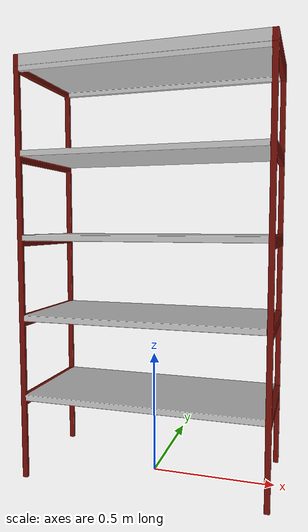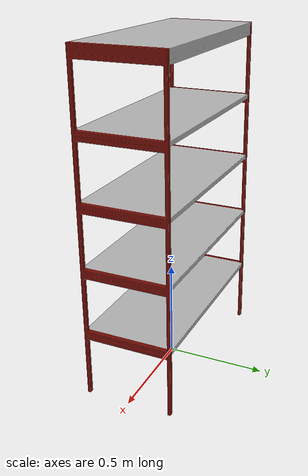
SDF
<?xml version="1.0"?>
<sdf version="1.6">
  <model name="rack">
    <static>false</static>
    <link name="link">
      <inertial>
        <pose>0 0 0 0 0 0</pose>
        <mass>1.87</mass>
        <inertia>
          <ixx>0.01857</ixx>
          <ixy>0.00</ixy>
          <ixz>0.00</ixz>
          <iyy>0.015598</iyy>
          <iyz>0.00</iyz>
          <izz>0.00305</izz>
        </inertia>
      </inertial>
      <collision name='collision_4'>
        <laser_retro>0</laser_retro>
        <max_contacts>10</max_contacts>
        <pose>0 0 1.315 0 1.57 0</pose>
        <geometry>
          <box>
            <size>0.05 0.44 1</size>
          </box>
        </geometry>
        <surface>
          <friction>
            <ode>
              <mu>1</mu>
              <mu2>1</mu2>
              <fdir1>0 0 0</fdir1>
              <slip1>0</slip1>
              <slip2>0</slip2>
            </ode>
            <torsional>
              <coefficient>1</coefficient>
              <patch_radius>0</patch_radius>
              <surface_radius>0</surface_radius>
              <use_patch_radius>1</use_patch_radius>
              <ode>
                <slip>0</slip>
              </ode>
            </torsional>
          </friction>
          <bounce>
            <restitution_coefficient>0</restitution_coefficient>
            <threshold>1e+06</threshold>
          </bounce>
          <contact>
            <collide_without_contact>0</collide_without_contact>
            <collide_without_contact_bitmask>1</collide_without_contact_bitmask>
            <collide_bitmask>1</collide_bitmask>
            <ode>
              <soft_cfm>0</soft_cfm>
              <soft_erp>0.2</soft_erp>
              <kp>1e+13</kp>
              <kd>1</kd>
              <max_vel>0.01</max_vel>
              <min_depth>0</min_depth>
            </ode>
            <bullet>
              <split_impulse>1</split_impulse>
              <split_impulse_penetration_threshold>-0.01</split_impulse_penetration_threshold>
              <soft_cfm>0</soft_cfm>
              <soft_erp>0.2</soft_erp>
              <kp>1e+13</kp>
              <kd>1</kd>
            </bullet>
          </contact>
        </surface>
      </collision>
      <collision name='collision_5'>
        <laser_retro>0</laser_retro>
        <max_contacts>10</max_contacts>
        <pose>0 0 0.98 0 1.57 0</pose>
        <geometry>
          <box>
            <size>0.05 0.448 1</size>
          </box>
        </geometry>
        <surface>
          <friction>
            <ode>
              <mu>1</mu>
              <mu2>1</mu2>
              <fdir1>0 0 0</fdir1>
              <slip1>0</slip1>
              <slip2>0</slip2>
            </ode>
            <torsional>
              <coefficient>1</coefficient>
              <patch_radius>0</patch_radius>
              <surface_radius>0</surface_radius>
              <use_patch_radius>1</use_patch_radius>
              <ode>
                <slip>0</slip>
              </ode>
            </torsional>
          </friction>
          <bounce>
            <restitution_coefficient>0</restitution_coefficient>
            <threshold>1e+06</threshold>
          </bounce>
          <contact>
            <collide_without_contact>0</collide_without_contact>
            <collide_without_contact_bitmask>1</collide_without_contact_bitmask>
            <collide_bitmask>1</collide_bitmask>
            <ode>
              <soft_cfm>0</soft_cfm>
              <soft_erp>0.2</soft_erp>
              <kp>1e+13</kp>
              <kd>1</kd>
              <max_vel>0.01</max_vel>
              <min_depth>0</min_depth>
            </ode>
            <bullet>
              <split_impulse>1</split_impulse>
              <split_impulse_penetration_threshold>-0.01</split_impulse_penetration_threshold>
              <soft_cfm>0</soft_cfm>
              <soft_erp>0.2</soft_erp>
              <kp>1e+13</kp>
              <kd>1</kd>
            </bullet>
          </contact>
        </surface>
      </collision>
      <collision name='collision_6'>
        <laser_retro>0</laser_retro>
        <max_contacts>10</max_contacts>
        <pose>0 0 0.66 0 1.57 0</pose>
        <geometry>
          <box>
            <size>0.05 0.448682 1</size>
          </box>
        </geometry>
        <surface>
          <friction>
            <ode>
              <mu>1</mu>
              <mu2>1</mu2>
              <fdir1>0 0 0</fdir1>
              <slip1>0</slip1>
              <slip2>0</slip2>
            </ode>
            <torsional>
              <coefficient>1</coefficient>
              <patch_radius>0</patch_radius>
              <surface_radius>0</surface_radius>
              <use_patch_radius>1</use_patch_radius>
              <ode>
                <slip>0</slip>
              </ode>
            </torsional>
          </friction>
          <bounce>
            <restitution_coefficient>0</restitution_coefficient>
            <threshold>1e+06</threshold>
          </bounce>
          <contact>
            <collide_without_contact>0</collide_without_contact>
            <collide_without_contact_bitmask>1</collide_without_contact_bitmask>
            <collide_bitmask>1</collide_bitmask>
            <ode>
              <soft_cfm>0</soft_cfm>
              <soft_erp>0.2</soft_erp>
              <kp>1e+13</kp>
              <kd>1</kd>
              <max_vel>0.01</max_vel>
              <min_depth>0</min_depth>
            </ode>
            <bullet>
              <split_impulse>1</split_impulse>
              <split_impulse_penetration_threshold>-0.01</split_impulse_penetration_threshold>
              <soft_cfm>0</soft_cfm>
              <soft_erp>0.2</soft_erp>
              <kp>1e+13</kp>
              <kd>1</kd>
            </bullet>
          </contact>
        </surface>
      </collision>
      <collision name='collision_3'>
        <laser_retro>0</laser_retro>
        <max_contacts>10</max_contacts>
        <pose>0 0 1.68 0 1.57 0</pose>
        <geometry>
          <box>
            <size>0.05 0.448682 1</size>
          </box>
        </geometry>
        <surface>
          <friction>
            <ode>
              <mu>1</mu>
              <mu2>1</mu2>
              <fdir1>0 0 0</fdir1>
              <slip1>0</slip1>
              <slip2>0</slip2>
            </ode>
            <torsional>
              <coefficient>1</coefficient>
              <patch_radius>0</patch_radius>
              <surface_radius>0</surface_radius>
              <use_patch_radius>1</use_patch_radius>
              <ode>
                <slip>0</slip>
              </ode>
            </torsional>
          </friction>
          <bounce>
            <restitution_coefficient>0</restitution_coefficient>
            <threshold>1e+06</threshold>
          </bounce>
          <contact>
            <collide_without_contact>0</collide_without_contact>
            <collide_without_contact_bitmask>1</collide_without_contact_bitmask>
            <collide_bitmask>1</collide_bitmask>
            <ode>
              <soft_cfm>0</soft_cfm>
              <soft_erp>0.2</soft_erp>
              <kp>1e+13</kp>
              <kd>1</kd>
              <max_vel>0.01</max_vel>
              <min_depth>0</min_depth>
            </ode>
            <bullet>
              <split_impulse>1</split_impulse>
              <split_impulse_penetration_threshold>-0.01</split_impulse_penetration_threshold>
              <soft_cfm>0</soft_cfm>
              <soft_erp>0.2</soft_erp>
              <kp>1e+13</kp>
              <kd>1</kd>
            </bullet>
          </contact>
        </surface>
      </collision>
      <collision name='collision_2'>
        <laser_retro>0</laser_retro>
        <max_contacts>10</max_contacts>
        <pose>-0.5 0 0.84 0 -0 0</pose>
        <geometry>
          <box>
            <size>0.05 0.44 1.688</size>
          </box>
        </geometry>
        <surface>
          <friction>
            <ode>
              <mu>1</mu>
              <mu2>1</mu2>
              <fdir1>0 0 0</fdir1>
              <slip1>0</slip1>
              <slip2>0</slip2>
            </ode>
            <torsional>
              <coefficient>1</coefficient>
              <patch_radius>0</patch_radius>
              <surface_radius>0</surface_radius>
              <use_patch_radius>1</use_patch_radius>
              <ode>
                <slip>0</slip>
              </ode>
            </torsional>
          </friction>
          <bounce>
            <restitution_coefficient>0</restitution_coefficient>
            <threshold>1e+06</threshold>
          </bounce>
          <contact>
            <collide_without_contact>0</collide_without_contact>
            <collide_without_contact_bitmask>1</collide_without_contact_bitmask>
            <collide_bitmask>1</collide_bitmask>
            <ode>
              <soft_cfm>0</soft_cfm>
              <soft_erp>0.2</soft_erp>
              <kp>1e+13</kp>
              <kd>1</kd>
              <max_vel>0.01</max_vel>
              <min_depth>0</min_depth>
            </ode>
            <bullet>
              <split_impulse>1</split_impulse>
              <split_impulse_penetration_threshold>-0.01</split_impulse_penetration_threshold>
              <soft_cfm>0</soft_cfm>
              <soft_erp>0.2</soft_erp>
              <kp>1e+13</kp>
              <kd>1</kd>
            </bullet>
          </contact>
        </surface>
      </collision>
      <collision name='collision_1'>
        <laser_retro>0</laser_retro>
        <max_contacts>10</max_contacts>
        <pose>0.5 0 0.84 0 -0 0</pose>
        <geometry>
          <box>
            <size>0.05 0.448682 1.68801</size>
          </box>
        </geometry>
        <surface>
          <friction>
            <ode>
              <mu>1</mu>
              <mu2>1</mu2>
              <fdir1>0 0 0</fdir1>
              <slip1>0</slip1>
              <slip2>0</slip2>
            </ode>
            <torsional>
              <coefficient>1</coefficient>
              <patch_radius>0</patch_radius>
              <surface_radius>0</surface_radius>
              <use_patch_radius>1</use_patch_radius>
              <ode>
                <slip>0</slip>
              </ode>
            </torsional>
          </friction>
          <bounce>
            <restitution_coefficient>0</restitution_coefficient>
            <threshold>1e+06</threshold>
          </bounce>
          <contact>
            <collide_without_contact>0</collide_without_contact>
            <collide_without_contact_bitmask>1</collide_without_contact_bitmask>
            <collide_bitmask>1</collide_bitmask>
            <ode>
              <soft_cfm>0</soft_cfm>
              <soft_erp>0.2</soft_erp>
              <kp>1e+13</kp>
              <kd>1</kd>
              <max_vel>0.01</max_vel>
              <min_depth>0</min_depth>
            </ode>
            <bullet>
              <split_impulse>1</split_impulse>
              <split_impulse_penetration_threshold>-0.01</split_impulse_penetration_threshold>
              <soft_cfm>0</soft_cfm>
              <soft_erp>0.2</soft_erp>
              <kp>1e+13</kp>
              <kd>1</kd>
            </bullet>
          </contact>
        </surface>
      </collision>
      <collision name='collision_7'>
        <laser_retro>0</laser_retro>
        <max_contacts>10</max_contacts>
        <pose>0 0 0.34 0 1.57 0</pose>
        <geometry>
          <box>
            <size>0.05 0.448682 1</size>
          </box>
        </geometry>
        <surface>
          <friction>
            <ode>
              <mu>1</mu>
              <mu2>1</mu2>
              <fdir1>0 0 0</fdir1>
              <slip1>0</slip1>
              <slip2>0</slip2>
            </ode>
            <torsional>
              <coefficient>1</coefficient>
              <patch_radius>0</patch_radius>
              <surface_radius>0</surface_radius>
              <use_patch_radius>1</use_patch_radius>
              <ode>
                <slip>0</slip>
              </ode>
            </torsional>
          </friction>
          <bounce>
            <restitution_coefficient>0</restitution_coefficient>
            <threshold>1e+06</threshold>
          </bounce>
          <contact>
            <collide_without_contact>0</collide_without_contact>
            <collide_without_contact_bitmask>1</collide_without_contact_bitmask>
            <collide_bitmask>1</collide_bitmask>
            <ode>
              <soft_cfm>0</soft_cfm>
              <soft_erp>0.2</soft_erp>
              <kp>1e+13</kp>
              <kd>1</kd>
              <max_vel>0.01</max_vel>
              <min_depth>0</min_depth>
            </ode>
            <bullet>
              <split_impulse>1</split_impulse>
              <split_impulse_penetration_threshold>-0.01</split_impulse_penetration_threshold>
              <soft_cfm>0</soft_cfm>
              <soft_erp>0.2</soft_erp>
              <kp>1e+13</kp>
              <kd>1</kd>
            </bullet>
          </contact>
        </surface>
      </collision>
      <visual name="visual1">
        <cast_shadows>false</cast_shadows>
        <geometry>
          <mesh><uri>model://rack/meshes/rack.dae</uri></mesh>
        </geometry>
      </visual>
    </link>
  </model>
</sdf>
